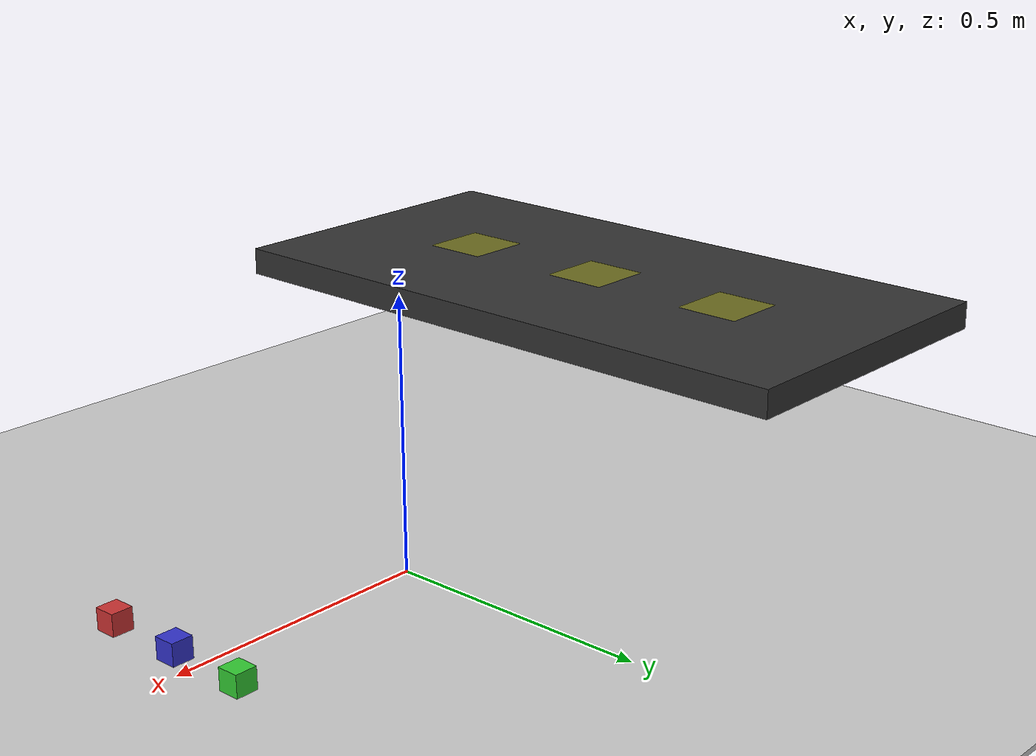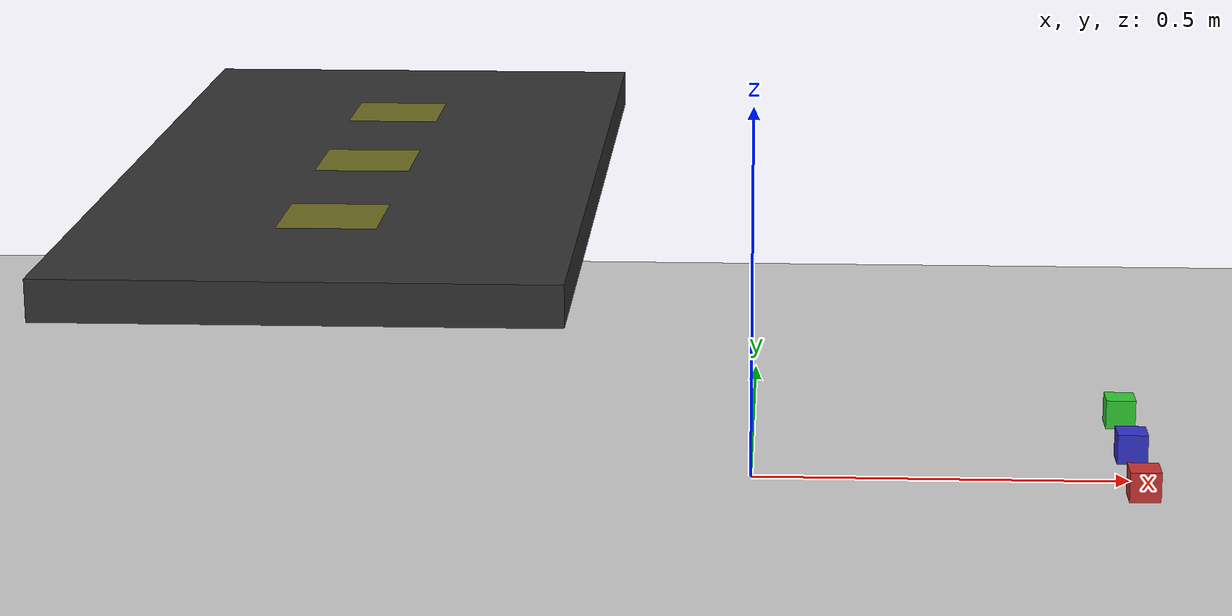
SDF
<?xml version="1.0"?>
<sdf version="1.7">
  <model name="warehouse_scene">
    <!-- Ground plane -->
    <model name="ground">
      <static>true</static>
      <link name="ground_link">
        <pose>0 0 -0.005 0 0 0</pose>
        <visual name="ground_visual">
          <geometry>
            <box>
              <size>10 10 0.01</size>
            </box>
          </geometry>
          <material>
            <ambient>0.8 0.8 0.8 1</ambient>
            <diffuse>0.8 0.8 0.8 1</diffuse>
          </material>
        </visual>
        <collision name="ground_collision">
          <geometry>
            <box>
              <size>10 10 0.01</size>
            </box>
          </geometry>
        </collision>
      </link>
    </model>

    <!-- Conveyor belt (simplified as static platform) -->
    <model name="conveyor">
      <static>true</static>
      <pose>-0.5 0 0.4 0 0 0</pose>
      <link name="belt">
        <visual name="visual">
          <geometry>
            <box>
              <size>0.6 1.2 0.05</size>
            </box>
          </geometry>
          <material>
            <ambient>0.2 0.2 0.2 1</ambient>
            <diffuse>0.2 0.2 0.2 1</diffuse>
          </material>
        </visual>
        <collision name="collision">
          <geometry>
            <box>
              <size>0.6 1.2 0.05</size>
            </box>
          </geometry>
        </collision>
      </link>
    </model>

    <!-- Boxes to pick - smaller and closer to robot -->
    <model name="box_red">
      <pose>0.5 -0.15 0.05 0 0 0</pose>
      <link name="box_link">
        <inertial>
          <mass>0.2</mass>
          <inertia>
            <ixx>0.0005</ixx>
            <iyy>0.0005</iyy>
            <izz>0.0005</izz>
            <ixy>0</ixy>
            <ixz>0</ixz>
            <iyz>0</iyz>
          </inertia>
        </inertial>
        <visual name="visual">
          <geometry>
            <box>
              <size>0.04 0.04 0.04</size>
            </box>
          </geometry>
          <material>
            <ambient>0.8 0.2 0.2 1</ambient>
            <diffuse>0.8 0.2 0.2 1</diffuse>
          </material>
        </visual>
        <collision name="collision">
          <geometry>
            <box>
              <size>0.04 0.04 0.04</size>
            </box>
          </geometry>
          <surface>
            <friction>
              <ode>
                <mu>0.8</mu>
                <mu2>0.8</mu2>
              </ode>
            </friction>
          </surface>
        </collision>
      </link>
    </model>

    <model name="box_blue">
      <pose>0.5 0 0.05 0 0 0</pose>
      <link name="box_link">
        <inertial>
          <mass>0.2</mass>
          <inertia>
            <ixx>0.0005</ixx>
            <iyy>0.0005</iyy>
            <izz>0.0005</izz>
            <ixy>0</ixy>
            <ixz>0</ixz>
            <iyz>0</iyz>
          </inertia>
        </inertial>
        <visual name="visual">
          <geometry>
            <box>
              <size>0.04 0.04 0.04</size>
            </box>
          </geometry>
          <material>
            <ambient>0.2 0.2 0.8 1</ambient>
            <diffuse>0.2 0.2 0.8 1</diffuse>
          </material>
        </visual>
        <collision name="collision">
          <geometry>
            <box>
              <size>0.04 0.04 0.04</size>
            </box>
          </geometry>
          <surface>
            <friction>
              <ode>
                <mu>0.8</mu>
                <mu2>0.8</mu2>
              </ode>
            </friction>
          </surface>
        </collision>
      </link>
    </model>

    <model name="box_green">
      <pose>0.5 0.15 0.05 0 0 0</pose>
      <link name="box_link">
        <inertial>
          <mass>0.2</mass>
          <inertia>
            <ixx>0.0005</ixx>
            <iyy>0.0005</iyy>
            <izz>0.0005</izz>
            <ixy>0</ixy>
            <ixz>0</ixz>
            <iyz>0</iyz>
          </inertia>
        </inertial>
        <visual name="visual">
          <geometry>
            <box>
              <size>0.04 0.04 0.04</size>
            </box>
          </geometry>
          <material>
            <ambient>0.2 0.8 0.2 1</ambient>
            <diffuse>0.2 0.8 0.2 1</diffuse>
          </material>
        </visual>
        <collision name="collision">
          <geometry>
            <box>
              <size>0.04 0.04 0.04</size>
            </box>
          </geometry>
          <surface>
            <friction>
              <ode>
                <mu>0.8</mu>
                <mu2>0.8</mu2>
              </ode>
            </friction>
          </surface>
        </collision>
      </link>
    </model>

    <!-- Target placement zones on conveyor -->
    <model name="target_zone_1">
      <static>true</static>
      <pose>-0.5 -0.3 0.425 0 0 0</pose>
      <link name="zone">
        <visual name="visual">
          <geometry>
            <box>
              <size>0.12 0.12 0.001</size>
            </box>
          </geometry>
          <material>
            <ambient>1 1 0 0.3</ambient>
            <diffuse>1 1 0 0.3</diffuse>
          </material>
        </visual>
      </link>
    </model>

    <model name="target_zone_2">
      <static>true</static>
      <pose>-0.5 0 0.425 0 0 0</pose>
      <link name="zone">
        <visual name="visual">
          <geometry>
            <box>
              <size>0.12 0.12 0.001</size>
            </box>
          </geometry>
          <material>
            <ambient>1 1 0 0.3</ambient>
            <diffuse>1 1 0 0.3</diffuse>
          </material>
        </visual>
      </link>
    </model>

    <model name="target_zone_3">
      <static>true</static>
      <pose>-0.5 0.3 0.425 0 0 0</pose>
      <link name="zone">
        <visual name="visual">
          <geometry>
            <box>
              <size>0.12 0.12 0.001</size>
            </box>
          </geometry>
          <material>
            <ambient>1 1 0 0.3</ambient>
            <diffuse>1 1 0 0.3</diffuse>
          </material>
        </visual>
      </link>
    </model>
  </model>
</sdf>
